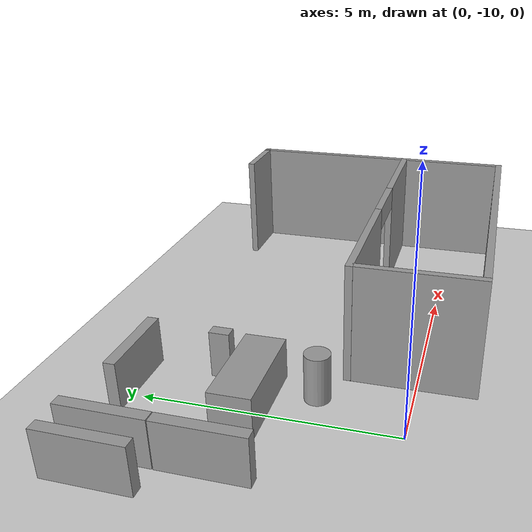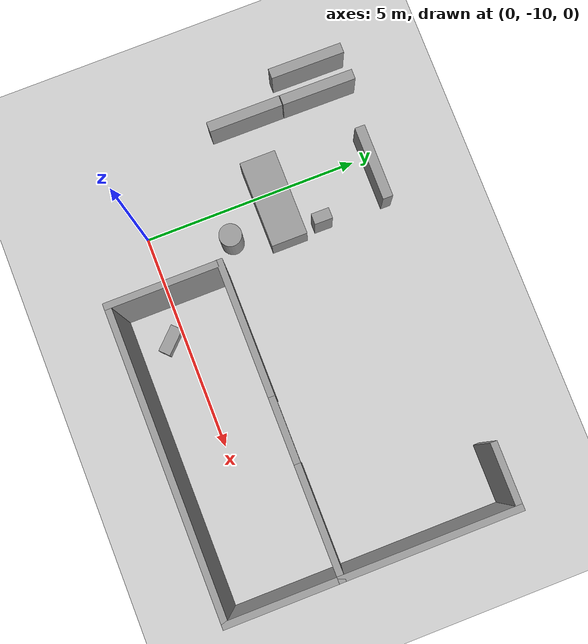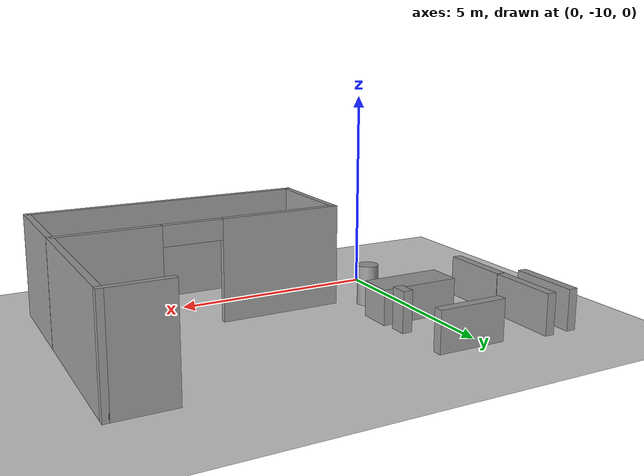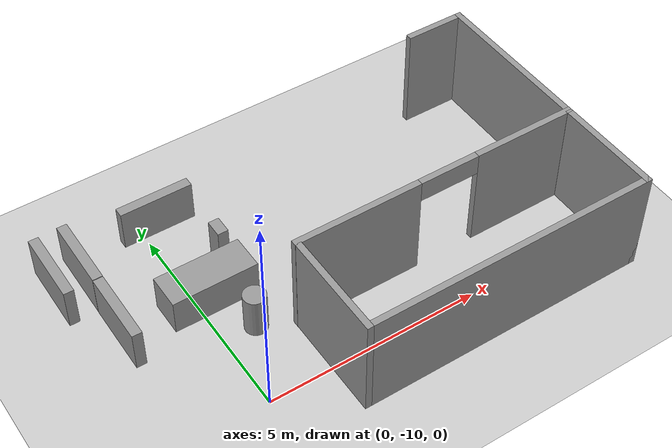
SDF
<sdf version="1.9">
 <world name="default">
  <model name="ground_plane">
   <static>true</static>
   <link name="link">
    <collision name="collision">
     <geometry><plane><normal>0 0 1</normal><size>100 100</size></plane></geometry>
     <surface><friction><ode><mu>100</mu><mu2>50</mu2></ode></friction></surface>
    </collision>
    <visual name="visual">
     <cast_shadows>false</cast_shadows>
     <geometry><plane><normal>0 0 1</normal><size>100 100</size></plane></geometry>
     <material>
      <script><uri>file://media/materials/scripts/gazebo.material</uri><name>Gazebo/Grey</name></script>
     </material>
    </visual>
   </link>
  </model>
  <model name="cma_parede_L">
   <pose>4.97628 -6.6999199999999997 0 0 0 0</pose>
   <link name="Wall_0">
    <pose>0 -1.925 0 0 0 0</pose>
    <visual name="Wall_0_Visual_0">
     <pose>-1.9850000000000001 0 1.25 0 0 0</pose>
     <geometry><box><size>3.0299999999999998 0.14999999999999999 2.5</size></box></geometry>
     <material>
      <script><uri>file://media/materials/scripts/gazebo.material</uri><name>Gazebo/Grey</name></script>
      <ambient>1 1 1 1</ambient>
     </material>
    </visual>
    <collision name="Wall_0_Collision_0">
     <geometry><box><size>3.0299999999999998 0.14999999999999999 2.5</size></box></geometry>
     <pose>-1.9850000000000001 0 1.25 0 0 0</pose>
    </collision>
    <visual name="Wall_0_Visual_1">
     <pose>2.2400000000000002 0 1.25 0 0 0</pose>
     <geometry><box><size>2.52 0.14999999999999999 2.5</size></box></geometry>
     <material>
      <script><uri>file://media/materials/scripts/gazebo.material</uri><name>Gazebo/Grey</name></script>
      <ambient>1 1 1 1</ambient>
     </material>
    </visual>
    <collision name="Wall_0_Collision_1">
     <geometry><box><size>2.52 0.14999999999999999 2.5</size></box></geometry>
     <pose>2.2400000000000002 0 1.25 0 0 0</pose>
    </collision>
    <visual name="Wall_0_Visual_2">
     <pose>0.255 0 2.25 0 0 0</pose>
     <geometry><box><size>1.45 0.14999999999999999 0.5</size></box></geometry>
     <material>
      <script><uri>file://media/materials/scripts/gazebo.material</uri><name>Gazebo/Grey</name></script>
      <ambient>1 1 1 1</ambient>
     </material>
    </visual>
    <collision name="Wall_0_Collision_2">
     <geometry><box><size>1.45 0.14999999999999999 0.5</size></box></geometry>
     <pose>0.255 0 2.25 0 0 0</pose>
    </collision>
   </link>
   <link name="Wall_1">
    <collision name="Wall_1_Collision">
     <geometry><box><size>4 0.14999999999999999 2.5</size></box></geometry>
     <pose>0 0 1.25 0 0 0</pose>
    </collision>
    <visual name="Wall_1_Visual">
     <pose>0 0 1.25 0 0 0</pose>
     <geometry><box><size>4 0.14999999999999999 2.5</size></box></geometry>
     <material>
      <script><uri>file://media/materials/scripts/gazebo.material</uri><name>Gazebo/Grey</name></script>
      <ambient>1 1 1 1</ambient>
     </material>
    </visual>
    <pose>3.4249999999999998 0 0 0 0 1.5708</pose>
   </link>
   <link name="Wall_2">
    <collision name="Wall_2_Collision">
     <geometry><box><size>1.5 0.14999999999999999 2.5</size></box></geometry>
     <pose>0 0 1.25 0 0 0</pose>
    </collision>
    <visual name="Wall_2_Visual">
     <pose>0 0 1.25 0 0 0</pose>
     <geometry><box><size>1.5 0.14999999999999999 2.5</size></box></geometry>
     <material>
      <script><uri>file://media/materials/scripts/gazebo.material</uri><name>Gazebo/Grey</name></script>
      <ambient>1 1 1 1</ambient>
     </material>
    </visual>
    <pose>2.75 1.925 0 0 0 3.1415899999999999</pose>
   </link>
   <static>true</static>
  </model>
  <model name="cma_U">
   <pose>4.9789500000000002 -9.92408 0 0 0 0</pose>
   <link name="Wall_16">
    <collision name="Wall_16_Collision">
     <geometry><box><size>2.5 0.14999999999999999 2.5</size></box></geometry>
     <pose>0 0 1.25 0 0 0</pose>
    </collision>
    <visual name="Wall_16_Visual">
     <pose>0 0 1.25 0 0 0</pose>
     <geometry><box><size>2.5 0.14999999999999999 2.5</size></box></geometry>
     <material>
      <script><uri>file://media/materials/scripts/gazebo.material</uri><name>Gazebo/Grey</name></script>
      <ambient>1 1 1 1</ambient>
     </material>
    </visual>
    <pose>-3.4249999999999998 0 0 0 0 -1.5708</pose>
   </link>
   <link name="Wall_17">
    <collision name="Wall_17_Collision">
     <geometry><box><size>7 0.14999999999999999 2.5</size></box></geometry>
     <pose>0 0 1.25 0 0 0</pose>
    </collision>
    <visual name="Wall_17_Visual">
     <pose>0 0 1.25 0 0 0</pose>
     <geometry><box><size>7 0.14999999999999999 2.5</size></box></geometry>
     <material>
      <script><uri>file://media/materials/scripts/gazebo.material</uri><name>Gazebo/Grey</name></script>
      <ambient>1 1 1 1</ambient>
     </material>
    </visual>
    <pose>0 -1.175 0 0 0 0</pose>
   </link>
   <link name="Wall_18">
    <collision name="Wall_18_Collision">
     <geometry><box><size>2.5 0.14999999999999999 2.5</size></box></geometry>
     <pose>0 0 1.25 0 0 0</pose>
    </collision>
    <visual name="Wall_18_Visual">
     <pose>0 0 1.25 0 0 0</pose>
     <geometry><box><size>2.5 0.14999999999999999 2.5</size></box></geometry>
     <material>
      <script><uri>file://media/materials/scripts/gazebo.material</uri><name>Gazebo/Grey</name></script>
      <ambient>1 1 1 1</ambient>
     </material>
    </visual>
    <pose>3.4249999999999998 0 0 0 0 1.5708</pose>
   </link>
   <static>true</static>
  </model>
  <model name="cma_armario_2">
   <link name="link_0">
    <pose>1.3215699999999999 0.88517800000000002 0.5 0 0 0</pose>
    <inertial>
     <mass>0.40237600000000001</mass>
     <inertia>
      <ixx>0.0353686</ixx>
      <ixy>0</ixy>
      <ixz>0</ixz>
      <iyy>0.13261600000000001</iyy>
      <iyz>0</iyz>
      <izz>0.100922</izz>
     </inertia>
    </inertial>
    <visual name="visual">
     <geometry><box><size>1.7187699999999999 0.234069 1</size></box></geometry>
     <material>
      <lighting>true</lighting>
      <script><uri>file://media/materials/scripts/gazebo.material</uri><name>Gazebo/Grey</name></script>
      <ambient>0.300000012 0.300000012 0.300000012 1</ambient>
      <diffuse>0.699999988 0.699999988 0.699999988 1</diffuse>
      <specular>0.00999999978 0.00999999978 0.00999999978 1</specular>
      <emissive>0 0 0 1</emissive>
     </material>
    </visual>
    <collision name="collision">
     <geometry><box><size>1.7187699999999999 0.234069 1</size></box></geometry>
     <surface>
      <friction>
       <ode><mu>1</mu><mu2>1</mu2><fdir1>0 0 0</fdir1><slip1>0</slip1><slip2>0</slip2></ode>
       <torsional>
        <coefficient>1</coefficient>
        <patch_radius>0</patch_radius>
        <surface_radius>0</surface_radius>
        <use_patch_radius>true</use_patch_radius>
        <ode><slip>0</slip></ode>
       </torsional>
      </friction>
      <bounce><restitution_coefficient>0</restitution_coefficient><threshold>1000000</threshold></bounce>
      <contact>
       <collide_without_contact>false</collide_without_contact>
       <collide_without_contact_bitmask>1</collide_without_contact_bitmask>
       <collide_bitmask>1</collide_bitmask>
       <ode>
        <soft_cfm>0</soft_cfm>
        <soft_erp>0.20000000000000001</soft_erp>
        <kp>10000000000000</kp>
        <kd>1</kd>
        <max_vel>0.01</max_vel>
        <min_depth>0</min_depth>
       </ode>
       <bullet>
        <split_impulse>true</split_impulse>
        <split_impulse_penetration_threshold>-0.01</split_impulse_penetration_threshold>
        <soft_cfm>0</soft_cfm>
        <soft_erp>0.20000000000000001</soft_erp>
        <kp>10000000000000</kp>
        <kd>1</kd>
       </bullet>
      </contact>
     </surface>
    </collision>
   </link>
   <static>false</static>
   <pose>-1.4423600000000001 -6.5634699999999997 0 0 0 1.5624499999999999</pose>
  </model>
  <model name="cma_cama_s_0">
   <link name="link_0">
    <pose>0 1.9999999999999999e-06 0 0 0 0</pose>
    <inertial>
     <mass>1.44546</mass>
     <inertia>
      <ixx>0.173816</ixx>
      <ixy>0</ixy>
      <ixz>0</ixz>
      <iyy>0.57522300000000004</iyy>
      <iyz>0</iyz>
      <izz>0.56745999999999996</izz>
     </inertia>
    </inertial>
    <visual name="visual">
     <geometry><box><size>2.0053999999999998 0.83022700000000005 0.86816300000000002</size></box></geometry>
     <material>
      <lighting>true</lighting>
      <script><uri>file://media/materials/scripts/gazebo.material</uri><name>Gazebo/Grey</name></script>
      <ambient>0.300000012 0.300000012 0.300000012 1</ambient>
      <diffuse>0.699999988 0.699999988 0.699999988 1</diffuse>
      <specular>0.00999999978 0.00999999978 0.00999999978 1</specular>
      <emissive>0 0 0 1</emissive>
     </material>
    </visual>
    <collision name="collision">
     <geometry><box><size>2.0053999999999998 0.83022700000000005 0.86816300000000002</size></box></geometry>
     <surface>
      <friction>
       <ode><mu>1</mu><mu2>1</mu2><fdir1>0 0 0</fdir1><slip1>0</slip1><slip2>0</slip2></ode>
       <torsional>
        <coefficient>1</coefficient>
        <patch_radius>0</patch_radius>
        <surface_radius>0</surface_radius>
        <use_patch_radius>true</use_patch_radius>
        <ode><slip>0</slip></ode>
       </torsional>
      </friction>
      <bounce><restitution_coefficient>0</restitution_coefficient><threshold>1000000</threshold></bounce>
      <contact>
       <collide_without_contact>false</collide_without_contact>
       <collide_without_contact_bitmask>1</collide_without_contact_bitmask>
       <collide_bitmask>1</collide_bitmask>
       <ode>
        <soft_cfm>0</soft_cfm>
        <soft_erp>0.20000000000000001</soft_erp>
        <kp>10000000000000</kp>
        <kd>1</kd>
        <max_vel>0.01</max_vel>
        <min_depth>0</min_depth>
       </ode>
       <bullet>
        <split_impulse>true</split_impulse>
        <split_impulse_penetration_threshold>-0.01</split_impulse_penetration_threshold>
        <soft_cfm>0</soft_cfm>
        <soft_erp>0.20000000000000001</soft_erp>
        <kp>10000000000000</kp>
        <kd>1</kd>
       </bullet>
      </contact>
     </surface>
    </collision>
   </link>
   <static>false</static>
   <pose>0.31302400000000002 -7.03078 0.43407800000000002 9.9999999999999995e-07 -4.0000000000000007e-06 0</pose>
  </model>
  <model name="cma_picador">
   <link name="link_2">
    <pose>-0.7258 -1.6910400000000001 0 0 0 0</pose>
    <inertial>
     <mass>0.10473200000000001</mass>
     <inertia>
      <ixx>0.0092790600000000004</ixx>
      <ixy>0</ixy>
      <ixz>0</ixz>
      <iyy>0.010243</iyy>
      <iyz>0</iyz>
      <izz>0.0020667200000000002</izz>
     </inertia>
    </inertial>
    <visual name="visual">
     <geometry><box><size>0.416688 0.25134000000000001 1</size></box></geometry>
     <material>
      <lighting>true</lighting>
      <script><uri>file://media/materials/scripts/gazebo.material</uri><name>Gazebo/Grey</name></script>
      <ambient>0.300000012 0.300000012 0.300000012 1</ambient>
      <diffuse>0.699999988 0.699999988 0.699999988 1</diffuse>
      <specular>0.00999999978 0.00999999978 0.00999999978 1</specular>
      <emissive>0 0 0 1</emissive>
     </material>
    </visual>
    <collision name="collision">
     <geometry><box><size>0.416688 0.25134000000000001 1</size></box></geometry>
     <surface>
      <friction>
       <ode><mu>1</mu><mu2>1</mu2><fdir1>0 0 0</fdir1><slip1>0</slip1><slip2>0</slip2></ode>
       <torsional>
        <coefficient>1</coefficient>
        <patch_radius>0</patch_radius>
        <surface_radius>0</surface_radius>
        <use_patch_radius>true</use_patch_radius>
        <ode><slip>0</slip></ode>
       </torsional>
      </friction>
      <bounce><restitution_coefficient>0</restitution_coefficient><threshold>1000000</threshold></bounce>
      <contact>
       <collide_without_contact>false</collide_without_contact>
       <collide_without_contact_bitmask>1</collide_without_contact_bitmask>
       <collide_bitmask>1</collide_bitmask>
       <ode>
        <soft_cfm>0</soft_cfm>
        <soft_erp>0.20000000000000001</soft_erp>
        <kp>10000000000000</kp>
        <kd>1</kd>
        <max_vel>0.01</max_vel>
        <min_depth>0</min_depth>
       </ode>
       <bullet>
        <split_impulse>true</split_impulse>
        <split_impulse_penetration_threshold>-0.01</split_impulse_penetration_threshold>
        <soft_cfm>0</soft_cfm>
        <soft_erp>0.20000000000000001</soft_erp>
        <kp>10000000000000</kp>
        <kd>1</kd>
       </bullet>
      </contact>
     </surface>
    </collision>
   </link>
   <static>false</static>
   <pose>-0.583179 -5.4498899999999999 0.49999900000000003 2.1175823681399859e-22 1.9999999999999995e-06 1.5627300000000002</pose>
  </model>
  <model name="cma_armario_3">
   <link name="link_0">
    <pose>1.3215699999999999 0.88517800000000002 0.5 0 0 0</pose>
    <inertial>
     <mass>0.40237600000000001</mass>
     <inertia>
      <ixx>0.0353686</ixx>
      <ixy>0</ixy>
      <ixz>0</ixz>
      <iyy>0.13261600000000001</iyy>
      <iyz>0</iyz>
      <izz>0.100922</izz>
     </inertia>
    </inertial>
    <visual name="visual">
     <geometry><box><size>1.7187699999999999 0.234069 1</size></box></geometry>
     <material>
      <lighting>true</lighting>
      <script><uri>file://media/materials/scripts/gazebo.material</uri><name>Gazebo/Grey</name></script>
      <ambient>0.300000012 0.300000012 0.300000012 1</ambient>
      <diffuse>0.699999988 0.699999988 0.699999988 1</diffuse>
      <specular>0.00999999978 0.00999999978 0.00999999978 1</specular>
      <emissive>0 0 0 1</emissive>
     </material>
    </visual>
    <collision name="collision">
     <geometry><box><size>1.7187699999999999 0.234069 1</size></box></geometry>
     <surface>
      <friction>
       <ode><mu>1</mu><mu2>1</mu2><fdir1>0 0 0</fdir1><slip1>0</slip1><slip2>0</slip2></ode>
       <torsional>
        <coefficient>1</coefficient>
        <patch_radius>0</patch_radius>
        <surface_radius>0</surface_radius>
        <use_patch_radius>true</use_patch_radius>
        <ode><slip>0</slip></ode>
       </torsional>
      </friction>
      <bounce><restitution_coefficient>0</restitution_coefficient><threshold>1000000</threshold></bounce>
      <contact>
       <collide_without_contact>false</collide_without_contact>
       <collide_without_contact_bitmask>1</collide_without_contact_bitmask>
       <collide_bitmask>1</collide_bitmask>
       <ode>
        <soft_cfm>0</soft_cfm>
        <soft_erp>0.20000000000000001</soft_erp>
        <kp>10000000000000</kp>
        <kd>1</kd>
        <max_vel>0.01</max_vel>
        <min_depth>0</min_depth>
       </ode>
       <bullet>
        <split_impulse>true</split_impulse>
        <split_impulse_penetration_threshold>-0.01</split_impulse_penetration_threshold>
        <soft_cfm>0</soft_cfm>
        <soft_erp>0.20000000000000001</soft_erp>
        <kp>10000000000000</kp>
        <kd>1</kd>
       </bullet>
      </contact>
     </surface>
    </collision>
   </link>
   <static>false</static>
   <pose>-0.94209299999999996 -5.5551599999999999 6.0000000000000002e-06 -4.0000000000000007e-06 6.0000000000000002e-06 -0.0030339999999999998</pose>
  </model>
  <model name="cma_armario_4">
   <link name="link_0">
    <pose>1.3215699999999999 0.88517800000000002 0.5 0 0 0</pose>
    <inertial>
     <mass>0.40237600000000001</mass>
     <inertia>
      <ixx>0.0353686</ixx>
      <ixy>0</ixy>
      <ixz>0</ixz>
      <iyy>0.13261600000000001</iyy>
      <iyz>0</iyz>
      <izz>0.100922</izz>
     </inertia>
    </inertial>
    <visual name="visual">
     <geometry><box><size>1.7187699999999999 0.234069 1</size></box></geometry>
     <material>
      <lighting>true</lighting>
      <script><uri>file://media/materials/scripts/gazebo.material</uri><name>Gazebo/Grey</name></script>
      <ambient>0.300000012 0.300000012 0.300000012 1</ambient>
      <diffuse>0.699999988 0.699999988 0.699999988 1</diffuse>
      <specular>0.00999999978 0.00999999978 0.00999999978 1</specular>
      <emissive>0 0 0 1</emissive>
     </material>
    </visual>
    <collision name="collision">
     <geometry><box><size>1.7187699999999999 0.234069 1</size></box></geometry>
     <surface>
      <friction>
       <ode><mu>1</mu><mu2>1</mu2><fdir1>0 0 0</fdir1><slip1>0</slip1><slip2>0</slip2></ode>
       <torsional>
        <coefficient>1</coefficient>
        <patch_radius>0</patch_radius>
        <surface_radius>0</surface_radius>
        <use_patch_radius>true</use_patch_radius>
        <ode><slip>0</slip></ode>
       </torsional>
      </friction>
      <bounce><restitution_coefficient>0</restitution_coefficient><threshold>1000000</threshold></bounce>
      <contact>
       <collide_without_contact>false</collide_without_contact>
       <collide_without_contact_bitmask>1</collide_without_contact_bitmask>
       <collide_bitmask>1</collide_bitmask>
       <ode>
        <soft_cfm>0</soft_cfm>
        <soft_erp>0.20000000000000001</soft_erp>
        <kp>10000000000000</kp>
        <kd>1</kd>
        <max_vel>0.01</max_vel>
        <min_depth>0</min_depth>
       </ode>
       <bullet>
        <split_impulse>true</split_impulse>
        <split_impulse_penetration_threshold>-0.01</split_impulse_penetration_threshold>
        <soft_cfm>0</soft_cfm>
        <soft_erp>0.20000000000000001</soft_erp>
        <kp>10000000000000</kp>
        <kd>1</kd>
       </bullet>
      </contact>
     </surface>
    </collision>
   </link>
   <static>false</static>
   <pose>-0.78496600000000005 -6.5472799999999998 0 0 0 1.5618300000000001</pose>
  </model>
  <model name="cma_armario_5">
   <link name="link_0">
    <pose>1.3215699999999999 0.88517800000000002 0.5 0 0 0</pose>
    <inertial>
     <mass>0.40237600000000001</mass>
     <inertia>
      <ixx>0.0353686</ixx>
      <ixy>0</ixy>
      <ixz>0</ixz>
      <iyy>0.13261600000000001</iyy>
      <iyz>0</iyz>
      <izz>0.100922</izz>
     </inertia>
    </inertial>
    <visual name="visual">
     <geometry><box><size>1.7187699999999999 0.234069 1</size></box></geometry>
     <material>
      <lighting>true</lighting>
      <script><uri>file://media/materials/scripts/gazebo.material</uri><name>Gazebo/Grey</name></script>
      <ambient>0.300000012 0.300000012 0.300000012 1</ambient>
      <diffuse>0.699999988 0.699999988 0.699999988 1</diffuse>
      <specular>0.00999999978 0.00999999978 0.00999999978 1</specular>
      <emissive>0 0 0 1</emissive>
     </material>
    </visual>
    <collision name="collision">
     <geometry><box><size>1.7187699999999999 0.234069 1</size></box></geometry>
     <surface>
      <friction>
       <ode><mu>1</mu><mu2>1</mu2><fdir1>0 0 0</fdir1><slip1>0</slip1><slip2>0</slip2></ode>
       <torsional>
        <coefficient>1</coefficient>
        <patch_radius>0</patch_radius>
        <surface_radius>0</surface_radius>
        <use_patch_radius>true</use_patch_radius>
        <ode><slip>0</slip></ode>
       </torsional>
      </friction>
      <bounce><restitution_coefficient>0</restitution_coefficient><threshold>1000000</threshold></bounce>
      <contact>
       <collide_without_contact>false</collide_without_contact>
       <collide_without_contact_bitmask>1</collide_without_contact_bitmask>
       <collide_bitmask>1</collide_bitmask>
       <ode>
        <soft_cfm>0</soft_cfm>
        <soft_erp>0.20000000000000001</soft_erp>
        <kp>10000000000000</kp>
        <kd>1</kd>
        <max_vel>0.01</max_vel>
        <min_depth>0</min_depth>
       </ode>
       <bullet>
        <split_impulse>true</split_impulse>
        <split_impulse_penetration_threshold>-0.01</split_impulse_penetration_threshold>
        <soft_cfm>0</soft_cfm>
        <soft_erp>0.20000000000000001</soft_erp>
        <kp>10000000000000</kp>
        <kd>1</kd>
       </bullet>
      </contact>
     </surface>
    </collision>
   </link>
   <static>false</static>
   <pose>-0.79348799999999997 -8.2784499999999994 0 0 0 1.56647</pose>
  </model>
  <model name="cma_cesto_0">
   <link name="link_1">
    <pose>-0.32965899999999998 -1.55494 0 0 0 0</pose>
    <inertial>
     <mass>0.267897</mass>
     <inertia>
      <ixx>0.026810199999999999</ixx>
      <ixy>0</ixy>
      <ixz>0</ixz>
      <iyy>0.026810199999999999</iyy>
      <iyz>0</iyz>
      <izz>0.0089711099999999992</izz>
     </inertia>
    </inertial>
    <visual name="visual">
     <geometry><cylinder><radius>0.25879200000000002</radius><length>1</length></cylinder></geometry>
     <material>
      <lighting>true</lighting>
      <script><uri>file://media/materials/scripts/gazebo.material</uri><name>Gazebo/Grey</name></script>
      <ambient>0.300000012 0.300000012 0.300000012 1</ambient>
      <diffuse>0.699999988 0.699999988 0.699999988 1</diffuse>
      <specular>0.00999999978 0.00999999978 0.00999999978 1</specular>
      <emissive>0 0 0 1</emissive>
     </material>
    </visual>
    <collision name="collision">
     <geometry><cylinder><radius>0.25879200000000002</radius><length>1</length></cylinder></geometry>
     <surface>
      <friction>
       <ode><mu>1</mu><mu2>1</mu2><fdir1>0 0 0</fdir1><slip1>0</slip1><slip2>0</slip2></ode>
       <torsional>
        <coefficient>1</coefficient>
        <patch_radius>0</patch_radius>
        <surface_radius>0</surface_radius>
        <use_patch_radius>true</use_patch_radius>
        <ode><slip>0</slip></ode>
       </torsional>
      </friction>
      <bounce><restitution_coefficient>0</restitution_coefficient><threshold>1000000</threshold></bounce>
      <contact>
       <collide_without_contact>false</collide_without_contact>
       <collide_without_contact_bitmask>1</collide_without_contact_bitmask>
       <collide_bitmask>1</collide_bitmask>
       <ode>
        <soft_cfm>0</soft_cfm>
        <soft_erp>0.20000000000000001</soft_erp>
        <kp>10000000000000</kp>
        <kd>1</kd>
        <max_vel>0.01</max_vel>
        <min_depth>0</min_depth>
       </ode>
       <bullet>
        <split_impulse>true</split_impulse>
        <split_impulse_penetration_threshold>-0.01</split_impulse_penetration_threshold>
        <soft_cfm>0</soft_cfm>
        <soft_erp>0.20000000000000001</soft_erp>
        <kp>10000000000000</kp>
        <kd>1</kd>
       </bullet>
      </contact>
     </surface>
    </collision>
   </link>
   <static>false</static>
   <pose>1.1020300000000001 -6.65937 0.49999900000000003 0 0 0</pose>
  </model>
  <model name="cma_barra_70cmD">
   <link name="link_2">
    <pose>3.7937500000000002 1.34046 0.5 0 0 -0.80353399999999986</pose>
    <inertial>
     <mass>0.063136800000000007</mass>
     <inertia>
      <ixx>0.0010654200000000001</ixx>
      <ixy>0</ixy>
      <ixz>0</ixz>
      <iyy>0.0028472699999999998</iyy>
      <iyz>0</iyz>
      <izz>0.0025815</izz>
     </inertia>
    </inertial>
    <visual name="visual">
     <geometry><box><size>0.64393800000000001 0.27572799999999997 0.35573700000000003</size></box></geometry>
     <material>
      <lighting>true</lighting>
      <script><uri>file://media/materials/scripts/gazebo.material</uri><name>Gazebo/Grey</name></script>
      <ambient>0.300000012 0.300000012 0.300000012 1</ambient>
      <diffuse>0.699999988 0.699999988 0.699999988 1</diffuse>
      <specular>0.00999999978 0.00999999978 0.00999999978 1</specular>
      <emissive>0 0 0 1</emissive>
     </material>
    </visual>
    <collision name="collision">
     <geometry><box><size>0.64393800000000001 0.27572799999999997 0.35573700000000003</size></box></geometry>
     <surface>
      <friction>
       <ode><mu>1</mu><mu2>1</mu2><fdir1>0 0 0</fdir1><slip1>0</slip1><slip2>0</slip2></ode>
       <torsional>
        <coefficient>1</coefficient>
        <patch_radius>0</patch_radius>
        <surface_radius>0</surface_radius>
        <use_patch_radius>true</use_patch_radius>
        <ode><slip>0</slip></ode>
       </torsional>
      </friction>
      <bounce><restitution_coefficient>0</restitution_coefficient><threshold>1000000</threshold></bounce>
      <contact>
       <collide_without_contact>false</collide_without_contact>
       <collide_without_contact_bitmask>1</collide_without_contact_bitmask>
       <collide_bitmask>1</collide_bitmask>
       <ode>
        <soft_cfm>0</soft_cfm>
        <soft_erp>0.20000000000000001</soft_erp>
        <kp>10000000000000</kp>
        <kd>1</kd>
        <max_vel>0.01</max_vel>
        <min_depth>0</min_depth>
       </ode>
       <bullet>
        <split_impulse>true</split_impulse>
        <split_impulse_penetration_threshold>-0.01</split_impulse_penetration_threshold>
        <soft_cfm>0</soft_cfm>
        <soft_erp>0.20000000000000001</soft_erp>
        <kp>10000000000000</kp>
        <kd>1</kd>
       </bullet>
      </contact>
     </surface>
    </collision>
   </link>
   <static>false</static>
   <pose>-1.41317 -11.647600000000001 -0.32218999999999998 5.0000000000000004e-06 -1.2000000000000002e-05 0.0039780000000000006</pose>
  </model>
 </world>
</sdf>
